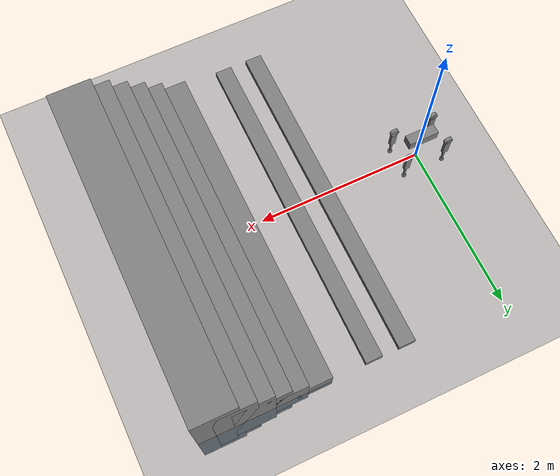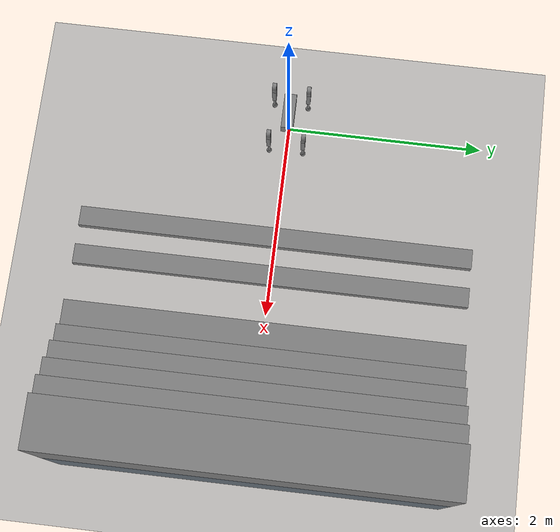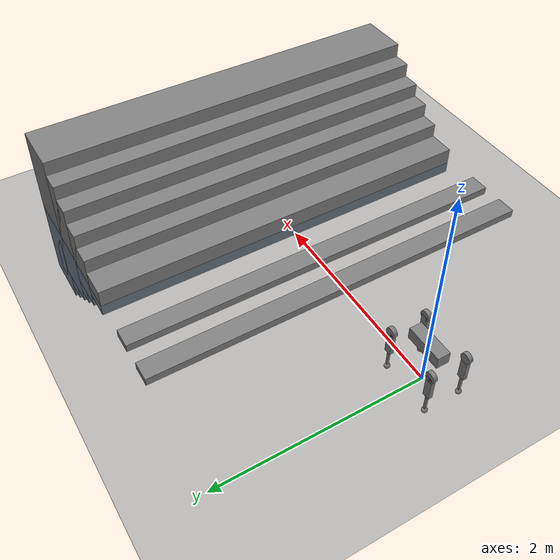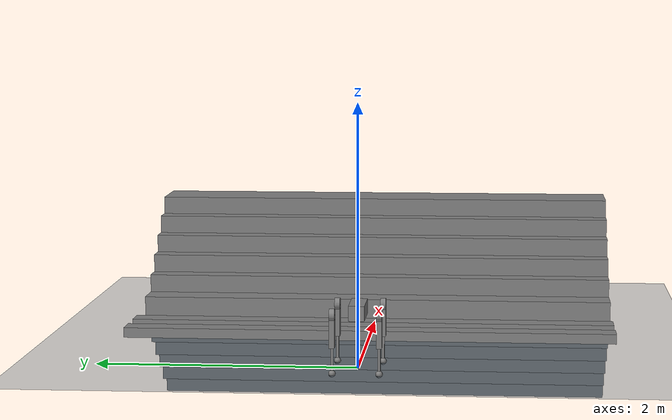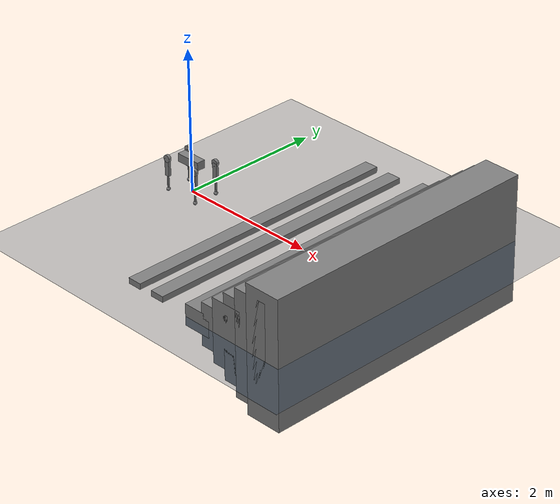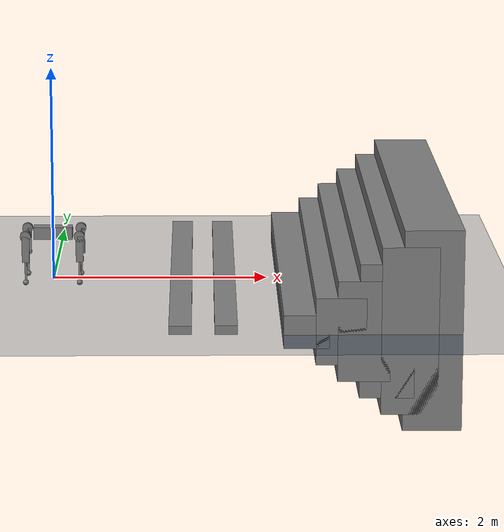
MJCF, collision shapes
<mujoco model="arcdog scene">
  <include file="arcdog.xml"/>

  <statistic center="0 0 0.1" extent="0.8"/>

  <visual>
    <headlight diffuse="0.6 0.6 0.6" ambient="0.3 0.3 0.3" specular="0 0 0"/>
    <rgba haze="0.15 0.25 0.35 1"/>
    <global azimuth="-130" elevation="-20"/>
  </visual>

  <asset>
    <texture type="skybox" builtin="gradient" rgb1="0.3 0.5 0.7" rgb2="0 0 0" width="512" height="3072"/>
    <texture type="2d" name="groundplane" builtin="checker" mark="edge" rgb1="0.2 0.3 0.4" rgb2="0.1 0.2 0.3"
      markrgb="0.8 0.8 0.8" width="300" height="300"/>
    <material name="groundplane" texture="groundplane" texuniform="true" texrepeat="5 5" reflectance="0.2"/>
  </asset>

  <worldbody>
    <light pos="0 0 1.5" dir="0 0 -1" directional="true"/>
    <geom name="floor" size="0 0 0.05" type="plane" material="groundplane"/>

    <geom pos="1.2 0 0.04" type="box"  size="0.1 2 0.04" quat="1.0 0 0 0"/>
    <geom pos="1.6 0 0.04" type="box"  size="0.1 2 0.04" quat="1.0 0 0 0"/>

    <geom pos="2.3 0 0.02" type="box"  size="0.2 2 0.15" quat="1.0 0 0 0"/>
    <geom pos="2.6 0 0.02" type="box"  size="0.22 2 0.3" quat="1.0 0 0 0"/>
    <geom pos="2.8 0 0.02" type="box"  size="0.23 2 0.45" quat="1.0 0 0 0"/>
    <geom pos="3 0 0.02" type="box"  size="0.24 2 0.6" quat="1.0 0 0 0"/>
    <geom pos="3.2 0 0.02" type="box"  size="0.25 2 0.75" quat="1.0 0 0 0"/>
    <geom pos="3.4 0 0.02" type="box"  size="0.26 2 0.9" quat="1.0 0 0 0"/>
  </worldbody>
</mujoco>

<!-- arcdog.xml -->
<mujoco model="arcdog">
  <compiler angle="radian" meshdir="meshes" autolimits="true" />

  <option cone="elliptic" impratio="100" />

  <default>
    <default class="arcdog">
      <geom friction="0.4" margin="0.001" condim="1"/>
      <joint axis="0 1 0" damping="0.1" armature="0.01" frictionloss="0.2"/>
      <motor ctrlrange="-23.7 23.7"/>
      <default class="abduction">
        <joint axis="1 0 0" range="-1.0472 1.0472"/> //TODO JUST COPY FROM GO2
      </default>
      <default class="hip">
        <default class="front_hip">
          <joint range="-1.5708 3.4907"/> //TODO JUST COPY FROM GO2
        </default>
        <default class="back_hip">
          <joint range="-0.5236 4.5379"/> //TODO JUST COPY FROM GO2
        </default>
      </default>
      <default class="knee">
        <joint range="-2.7227 -0.83776"/> //TODO JUST COPY FROM GO2
        <motor ctrlrange="-45.43 45.43"/>
      </default>
      <default class="visual">
        <geom type="mesh" contype="0" conaffinity="0" group="2"/>
      </default>
      <default class="collision">
        <geom group="3"/>
        <default class="foot">
          <geom size="0.0265" pos="-0.002 0 -0.19534" priority="1" condim="6"
            friction="0.4 0.02 0.01"/>
        </default>
      </default>
    </default>
  </default>

  <asset>
    <material name="metal" rgba=".9 .95 .95 1" />
    <material name="black" rgba="0 0 0 1" />
    <material name="white" rgba="1 1 1 1" />
    <material name="gray" rgba="0.671705 0.692426 0.774270 1" />

    <mesh file="trunk.stl" scale="1 1 1"/>
    <mesh file="hip.stl"/>
    <mesh file="thigh.stl"/>
    <mesh file="thigh_mirror.stl"/>
    <mesh file="calf.stl"/>
    <mesh file="foot.obj" />
  </asset>

  <worldbody>
    <body name="base_link" pos="0 0 0.445" childclass="arcdog">
      <inertial pos="-0.002250 0.000116 -0.001452" quat="1 0 0 0"
        mass="5.742"
        diaginertia="0.037914363 0.119267297 0.142804844" />
      <freejoint />
      <geom mesh="trunk" material="gray" class="visual" />
      <geom size="0.1805 0.0605 0.057" type="box" class="collision"/> //size of xml box model is half of urdf model
      <site name="imu" pos="-0.02557 0 0.04232" /> //TODO JUST COPY FROM GO2

      <body name="FL_hip" pos="0.2515 0.0605 0">
        <inertial pos="-0.0082 0.000984 0.000162" quat="0.494941 0.495107 0.504986 0.504868" mass="1.108" diaginertia="0.000972670 0.001754403 0.001311138" />
        <joint name="FL_hip_joint" class="abduction" />
        <geom mesh="hip" material="metal" class="visual" />
        <geom size="0.0495 0.02" pos="0 0.11475 0" quat="0.707107 0.707107 0 0" type="cylinder" class="collision" />
        <body name="FL_thigh" pos="0 0.11475 0">
          <inertial pos="-0.004484 -0.033084 -0.030728" quat="1 0 0 0" mass="1.636" diaginertia="0.009596889 0.009201469 0.002385568" />
          <joint name="FL_thigh_joint" class="front_hip" />
          <geom mesh="thigh" material="metal" class="visual" />
          <geom size="0.12225 0.020 0.033985" pos="0 0 -0.12225" quat="0.707107 0 0.707107 0" type="box" class="collision" />
          <body name="FL_calf" pos="0 0 -0.2445">
            <inertial pos="0.005552 0 -0.108279" quat="0.707094 -0.00418023 -0.00418023 0.707094" mass="0.180" diaginertia="0.001206453 0.001233919 0.000039128" />
            <joint name="FL_calf_joint" class="knee" />
            <geom mesh="calf" material="gray" class="visual" />
            <geom size="0.09767 0.01 0.01" pos="0 0 -0.09767" quat="0.707107 0 0.707107 0" type="box" class="collision" />
            <geom pos="0 0 -0.19534" mesh="foot" class="visual" material="black" />
            <geom name="FL_foot" class="foot" />
            <body name="FL_foot"/>
          </body>
        </body>
      </body>

      <body name="FR_hip" pos="0.2515 -0.0605 0">
        <inertial pos="-0.0082 0.000984 0.000162" quat="0.494941 0.495107 0.504986 0.504868" mass="1.108" diaginertia="0.000972670 0.001754403 0.001311138" />
        <joint name="FR_hip_joint" class="abduction" />
        <geom mesh="hip" material="metal" class="visual" quat="4.63268e-05 1 0 0" />
        <geom size="0.0495 0.02" pos="0 -0.11475 0" quat="0.707107 0.707107 0 0" type="cylinder" class="collision" />
        <body name="FR_thigh" pos="0 -0.11475 0">
          <inertial pos="-0.004484 0.033084 -0.030728" quat="1 0 0 0" mass="1.636" diaginertia="0.009596889 0.009201469 0.002385568" />
          <joint name="FR_thigh_joint" class="front_hip" />
          <geom mesh="thigh_mirror" material="metal" class="visual" />
          <geom size="0.12225 0.020 0.033985" pos="0 0 -0.12225" quat="0.707107 0 0.707107 0" type="box" class="collision" />
          <body name="FR_calf" pos="0 0 -0.2445">
            <inertial pos="0.005552 0 -0.108279" quat="0.707094 -0.00418023 -0.00418023 0.707094" mass="0.180" diaginertia="0.001206453 0.001233919 0.000039128" />
            <joint name="FR_calf_joint" class="knee" />
            <geom mesh="calf" material="gray" class="visual" />
            <geom size="0.09767 0.01 0.01" pos="0 0 -0.09767" quat="0.707107 0 0.707107 0" type="box" class="collision" />
            <geom pos="0 0 -0.19534" mesh="foot" class="visual" material="black" />
            <geom name="FR_foot" class="foot" />
            <body name="FR_foot"/>
          </body>
        </body>
      </body>

      <body name="RL_hip" pos="-0.2515 0.0605 0">
        <inertial pos="-0.0082 0.000984 0.000162" quat="0.494941 0.495107 0.504986 0.504868" mass="1.108" diaginertia="0.000972670 0.001754403 0.001311138" />
        <joint name="RL_hip_joint" class="abduction" />
        <geom mesh="hip" material="metal" class="visual" quat="4.63268e-05 0 1 0" />
        <geom size="0.0495 0.02" pos="0 0.11475 0" quat="0.707107 0.707107 0 0" type="cylinder" class="collision" />
        <body name="RL_thigh" pos="0 0.11475 0">
          <inertial pos="-0.004484 -0.033084 -0.030728" quat="1 0 0 0" mass="1.636" diaginertia="0.009596889 0.009201469 0.002385568" />
          <joint name="RL_thigh_joint" class="back_hip" />
          <geom mesh="thigh" material="metal" class="visual" />
          <geom size="0.12225 0.020 0.033985" pos="0 0 -0.12225" quat="0.707107 0 0.707107 0" type="box" class="collision" />
          <body name="RL_calf" pos="0 0 -0.2445">
            <inertial pos="0.005552 0 -0.108279" quat="0.707094 -0.00418023 -0.00418023 0.707094" mass="0.180" diaginertia="0.001206453 0.001233919 0.000039128" />
            <joint name="RL_calf_joint" class="knee" />
            <geom mesh="calf" material="gray" class="visual" />
            <geom size="0.09767 0.01 0.01" pos="0 0 -0.09767" quat="0.707107 0 0.707107 0" type="box" class="collision" />
            <geom pos="0 0 -0.19534" mesh="foot" class="visual" material="black" />
            <geom name="RL_foot" class="foot" />
            <body name="RL_foot" />
          </body>
        </body>
      </body>

      <body name="RR_hip" pos="-0.2515 -0.0605 0">
        <inertial pos="-0.0082 0.000984 0.000162" quat="0.494941 0.495107 0.504986 0.504868" mass="1.108" diaginertia="0.000972670 0.001754403 0.001311138" />
        <joint name="RR_hip_joint" class="abduction" />
        <geom mesh="hip" material="metal" class="visual"
          quat="2.14617e-09 4.63268e-05 4.63268e-05 -1" />
        <geom size="0.0495 0.02" pos="0 -0.11475 0" quat="0.707107 0.707107 0 0" type="cylinder" class="collision" />
        <body name="RR_thigh" pos="0 -0.11475 0">
          <inertial pos="-0.004484 0.033084 -0.030728" quat="1 0 0 0" mass="1.636" diaginertia="0.009596889 0.009201469 0.002385568" />
          <joint name="RR_thigh_joint" class="back_hip" />
          <geom mesh="thigh_mirror" material="metal" class="visual" />
          <geom size="0.12225 0.020 0.033985" pos="0 0 -0.12225" quat="0.707107 0 0.707107 0" type="box" class="collision" />
          <body name="RR_calf" pos="0 0 -0.2445">
            <inertial pos="0.005552 0 -0.108279" quat="0.707094 -0.00418023 -0.00418023 0.707094" mass="0.180" diaginertia="0.001206453 0.001233919 0.000039128" />
            <joint name="RR_calf_joint" class="knee" />
            <geom mesh="calf" material="gray" class="visual" />
            <geom size="0.09767 0.01 0.01" pos="0 0 -0.09767" quat="0.707107 0 0.707107 0" type="box" class="collision" />
            <geom pos="0 0 -0.19534" mesh="foot" class="visual" material="black" />
            <geom name="RR_foot" class="foot" />
            <body name="RR_foot"/>
          </body>
        </body>
      </body>
    </body>
  </worldbody>

  <actuator>
    <motor class="abduction" name="FR_hip_joint" joint="FR_hip_joint" />
    <motor class="hip" name="FR_thigh_joint" joint="FR_thigh_joint" />
    <motor class="knee" name="FR_calf_joint" joint="FR_calf_joint" />
    <motor class="abduction" name="FL_hip_joint" joint="FL_hip_joint" />
    <motor class="hip" name="FL_thigh_joint" joint="FL_thigh_joint" />
    <motor class="knee" name="FL_calf_joint" joint="FL_calf_joint" />
    <motor class="abduction" name="RR_hip_joint" joint="RR_hip_joint" />
    <motor class="hip" name="RR_thigh_joint" joint="RR_thigh_joint" />
    <motor class="knee" name="RR_calf_joint" joint="RR_calf_joint" />
    <motor class="abduction" name="RL_hip_joint" joint="RL_hip_joint" />
    <motor class="hip" name="RL_thigh_joint" joint="RL_thigh_joint" />
    <motor class="knee" name="RL_calf_joint" joint="RL_calf_joint" />
  </actuator>

  <sensor>
    <jointpos name="FR_hip_pos" joint="FR_hip_joint" />
    <jointpos name="FR_thigh_pos" joint="FR_thigh_joint" />
    <jointpos name="FR_calf_pos" joint="FR_calf_joint" />
    <jointpos name="FL_hip_pos" joint="FL_hip_joint" />
    <jointpos name="FL_thigh_pos" joint="FL_thigh_joint" />
    <jointpos name="FL_calf_pos" joint="FL_calf_joint" />
    <jointpos name="RR_hip_pos" joint="RR_hip_joint" />
    <jointpos name="RR_thigh_pos" joint="RR_thigh_joint" />
    <jointpos name="RR_calf_pos" joint="RR_calf_joint" />
    <jointpos name="RL_hip_pos" joint="RL_hip_joint" />
    <jointpos name="RL_thigh_pos" joint="RL_thigh_joint" />
    <jointpos name="RL_calf_pos" joint="RL_calf_joint" />

    <jointvel name="FR_hip_vel" joint="FR_hip_joint" />
    <jointvel name="FR_thigh_vel" joint="FR_thigh_joint" />
    <jointvel name="FR_calf_vel" joint="FR_calf_joint" />
    <jointvel name="FL_hip_vel" joint="FL_hip_joint" />
    <jointvel name="FL_thigh_vel" joint="FL_thigh_joint" />
    <jointvel name="FL_calf_vel" joint="FL_calf_joint" />
    <jointvel name="RR_hip_vel" joint="RR_hip_joint" />
    <jointvel name="RR_thigh_vel" joint="RR_thigh_joint" />
    <jointvel name="RR_calf_vel" joint="RR_calf_joint" />
    <jointvel name="RL_hip_vel" joint="RL_hip_joint" />
    <jointvel name="RL_thigh_vel" joint="RL_thigh_joint" />
    <jointvel name="RL_calf_vel" joint="RL_calf_joint" />

    <jointactuatorfrc name="FR_hip_torque" joint="FR_hip_joint" noise="0.01" />
    <jointactuatorfrc name="FR_thigh_torque" joint="FR_thigh_joint" noise="0.01" />
    <jointactuatorfrc name="FR_calf_torque" joint="FR_calf_joint" noise="0.01" />
    <jointactuatorfrc name="FL_hip_torque" joint="FL_hip_joint" noise="0.01" />
    <jointactuatorfrc name="FL_thigh_torque" joint="FL_thigh_joint" noise="0.01" />
    <jointactuatorfrc name="FL_calf_torque" joint="FL_calf_joint" noise="0.01" />
    <jointactuatorfrc name="RR_hip_torque" joint="RR_hip_joint" noise="0.01" />
    <jointactuatorfrc name="RR_thigh_torque" joint="RR_thigh_joint" noise="0.01" />
    <jointactuatorfrc name="RR_calf_torque" joint="RR_calf_joint" noise="0.01" />
    <jointactuatorfrc name="RL_hip_torque" joint="RL_hip_joint" noise="0.01" />
    <jointactuatorfrc name="RL_thigh_torque" joint="RL_thigh_joint" noise="0.01" />
    <jointactuatorfrc name="RL_calf_torque" joint="RL_calf_joint" noise="0.01" />

    <framequat name="imu_quat" objtype="site" objname="imu" />
    <gyro name="imu_gyro" site="imu" />
    <accelerometer name="imu_acc" site="imu" />

    <framepos name="frame_pos" objtype="site" objname="imu" />
    <framelinvel name="frame_vel" objtype="site" objname="imu" />
  </sensor>

  <keyframe>
    <key name="home" qpos="0 0 0.35 1 0 0 0 0 0.9 -1.8 0 0.9 -1.8 0 0.9 -1.8 0 0.9 -1.8"
      ctrl="0 0.9 -1.8 0 0.9 -1.8 0 0.9 -1.8 0 0.9 -1.8" />
  </keyframe>
</mujoco>
